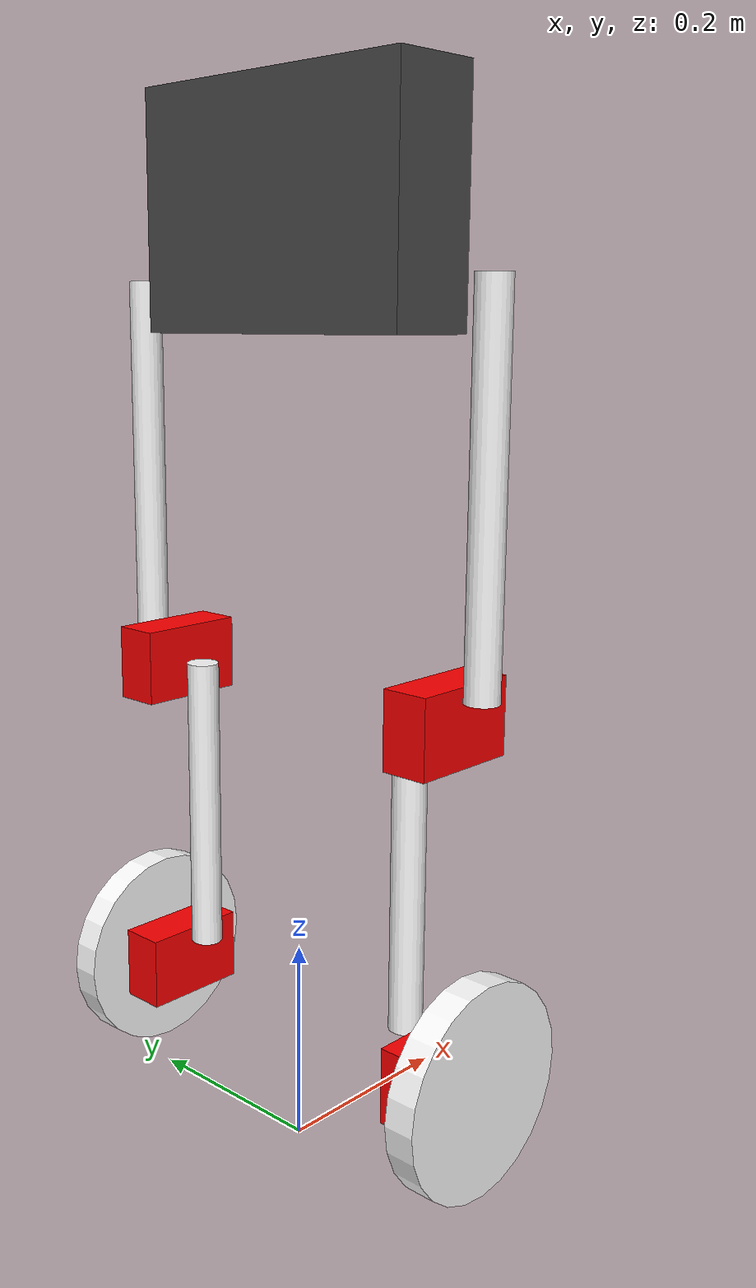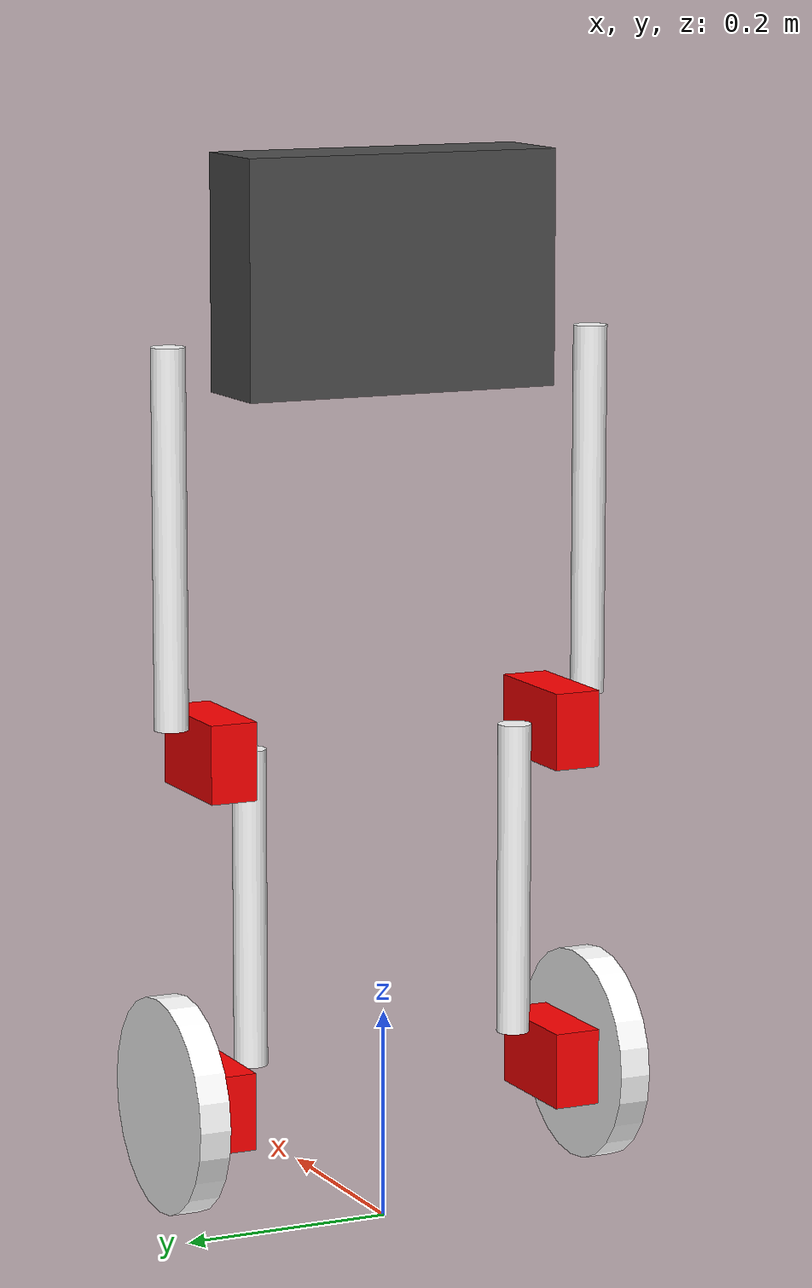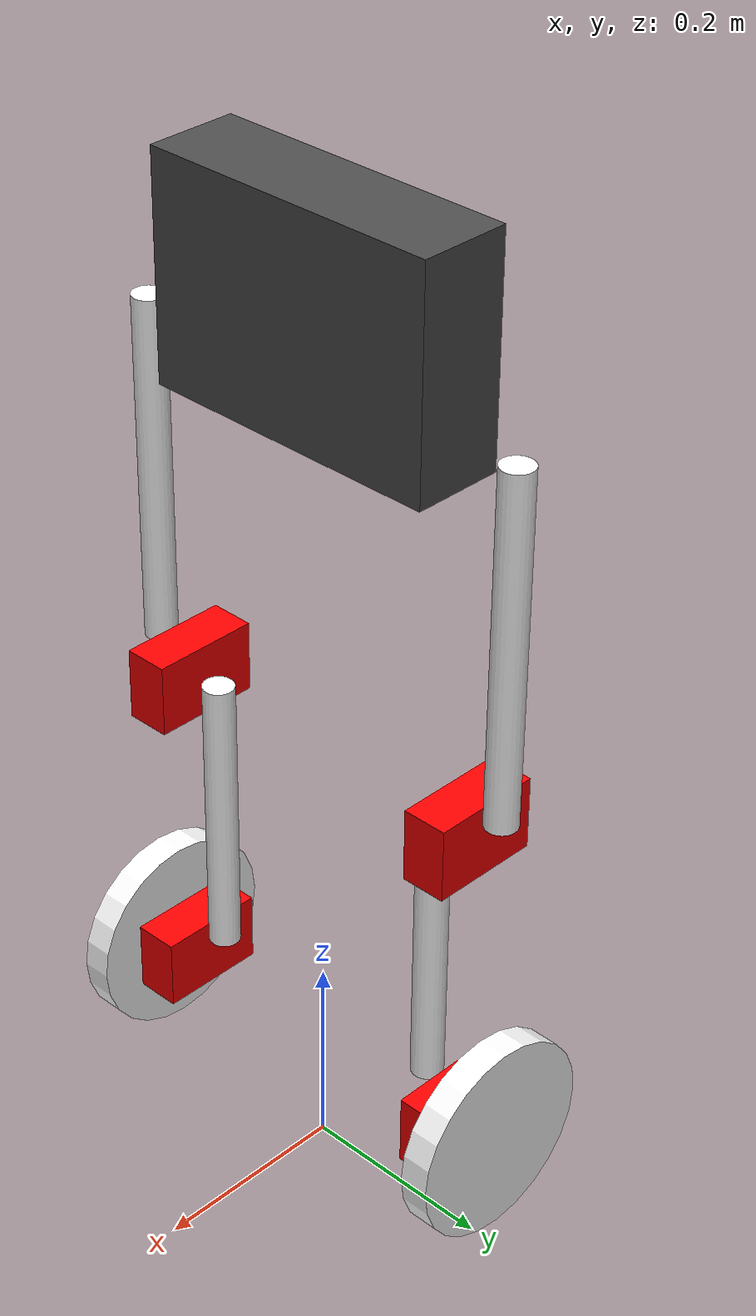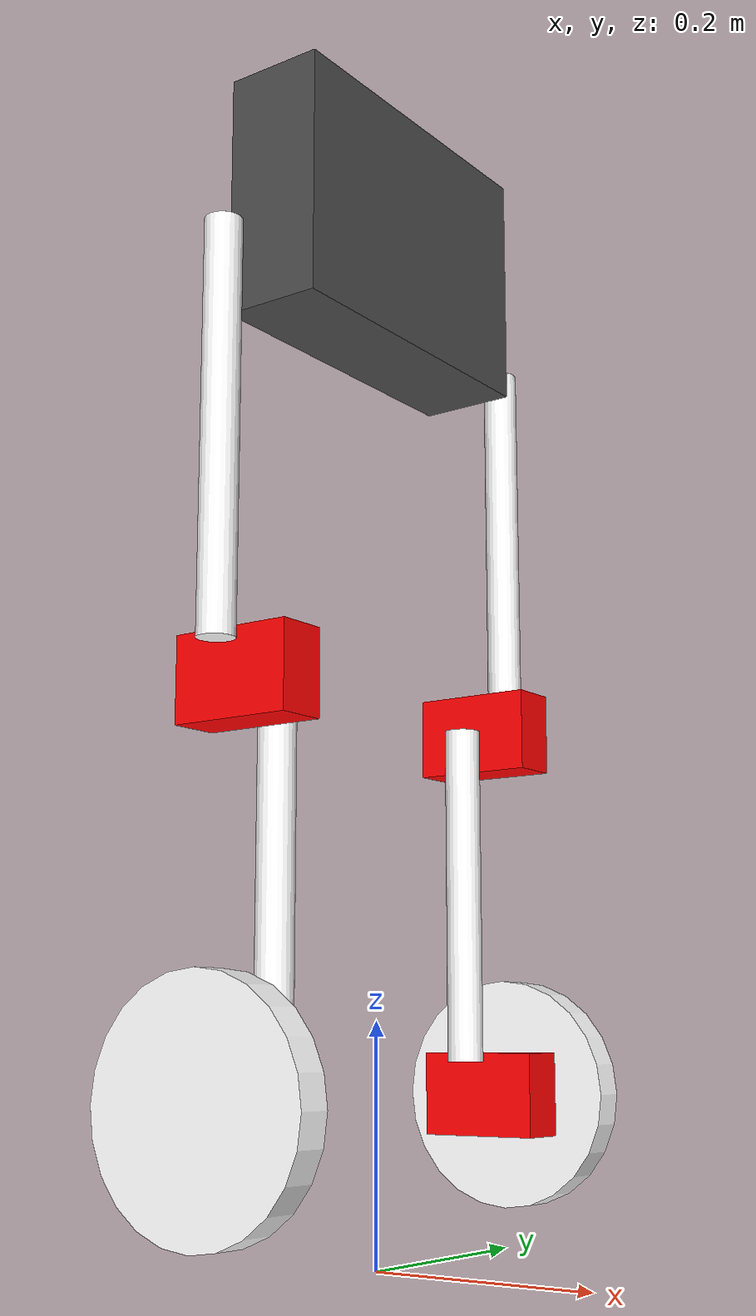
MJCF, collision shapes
<mujoco model="igor">
    <option timestep="0.002" gravity="0 0 -9.81" />
    <compiler angle="radian" assetdir="assets"/>
    <size njmax="500" nconmax="500" />

    <default>
    <default class="visual">
      <geom type="mesh" contype="0" conaffinity="0" group="2"/>
    </default>
    <default class="collision">
        <geom contype="1" conaffinity="1" group="3"/>
        </default>
    </default>

    <asset>
        <texture builtin="gradient" height="100" rgb1="1 1 1" rgb2="0 0 0" type="skybox" width="100"/>
        <texture builtin="flat" height="1278" mark="cross" markrgb="1 1 1" name="texgeom" random="0.01" rgb1="0.8 0.6 0.4" rgb2="0.8 0.6 0.4" type="cube" width="127"/>
        <texture builtin="checker" height="100" name="texplane" rgb1="0.68 1 0.83" rgb2="0 0.75 1" type="2d" width="100"/>
        <material name="MatPlane" reflectance="0.0" shininess="10" specular="1" texrepeat="60 60" texture="texplane"/>

        <material name="geom" texture="texgeom" texuniform="true"/>
        <hfield name='mytilted' file='ground_wavy.png' nrow='0' ncol='0' size='30 30 0.3 0.01' />

        <mesh file="wheel.STL" scale="0.001 0.001 0.001"/>
        <mesh file="IgorWheel.STL" scale="0.001 0.001 0.001"/>
        <mesh file="X8-Export.STL" scale="0.001 0.001 0.001"/>
        <mesh file="lowerLeg.STL" scale="0.001 0.001 0.001"/>
        <mesh file="upperLeg.STL" scale="0.001 0.001 0.001"/>

    </asset>

    <worldbody>

        <body name="torso" pos="0 0 0.9">
            <geom size="0.045 0.1525 0.109" type="box" rgba="0.3 0.3 0.3 1" />
            <geom mass="0" size="0.045 0.1525 0.109" type="box" rgba="0.3 0.3 0.3 1" class="visual"/>
            <geom pos="0.035 0.155 -0.1" quat="4.32963729e-17 4.32963729e-17 7.07106781e-01 7.07106781e-01" type="mesh" mesh="X8-Export" rgba="1 0 0 1" contype="0" conaffinity="0"/>
            <geom pos="0.035 -0.155 -0.025" quat="4.32963729e-17 -4.32963729e-17 -7.07106781e-01  7.07106781e-01" type="mesh" mesh="X8-Export" rgba="1 0 0 1" contype="0" conaffinity="0"/>
            <freejoint name="free"/>
            <body name="L_upperleg" pos="0 0.213375 -0.06">

                <inertial pos="0 -0.0259596 -0.309843" quat="0.70542 -0.0488131 0.0488131 0.70542" mass="0.68" diaginertia="0.00899163 0.00867248 0.000646855" />
                <joint name="L_hfe_joint" pos="0 0 0" axis="0 1 0" limited="true" range="-6.28318 6.28318" damping="10" />

                <geom size="0.015875 0.175" pos="0 0 -0.175" type="cylinder" rgba="1 1 1 0" />
                <geom pos="0.03 -0.045 0.025" quat="0.5 -0.5 0.5 0.5" type="mesh" mesh="upperLeg" rgba="0.3 0.3 0.3 1" contype="0" conaffinity="0"/>

                <geom size="0.055 0.0225 0.0365" pos="0 -0.038375 -0.374333" type="box" rgba="1 0 0 0" />
                <geom pos="-0.035 -0.014 -0.41" quat="0.707 0.707 0 0" type="mesh" mesh="X8-Export" rgba="1 0 0 1" contype="0" conaffinity="0"/>

                <body name="L_lowerleg" pos="0 -0.07675 -0.374333">
                    <inertial pos="0 0.0287152 -0.274897" quat="0.70457 0.0598424 -0.0598424 0.70457" mass="0.66" diaginertia="0.0068334 0.00651392 0.000642521" />
                    <joint name="L_kfe_joint" pos="0 0 0" axis="0 1 0" limited="true" range="-6.28318 6.28318" damping="10" />

                    <geom size="0.015875 0.15" pos="0 0 -0.15" type="cylinder" rgba="1 1 1 0" />
                    <geom pos="0.045 0.035 -0.38" type="mesh" quat="0.5 0.5 -0.5 0.5" mesh="lowerLeg" rgba="0.3 0.3 0.3 1" contype="0" conaffinity="0"/>

                    <geom size="0.055 0.0225 0.0365" pos="0 0.0412 -0.3292" type="box" rgba="1 0 0 0" />
                    <geom pos="-0.035 0.02 -0.292" quat="0.707 -0.707 0 0" type="mesh" mesh="X8-Export" rgba="1 0 0 1" contype="0" conaffinity="0"/>

                    <body name="L_wheel" pos="0 0.0787 -0.3292">
                        <inertial pos="0 0 0" quat="0.707107 0 0 0.707107" mass="0.35" diaginertia="0.001806 0.000929 0.000929" />
                        <joint name="L_wheel_joint" pos="0 0 0" axis="0 1 0" damping="0.25" frictionloss="0.0011" />

                        <geom size="0.1016 0.015" quat="0.707107 0.707106 0 0" type="cylinder" rgba="1 1 1 0" />
                        <geom pos ="-0.1016 -0.1016 -0.1016 " type="mesh" mesh="wheel" rgba="0.3 0.3 0.3 1" contype="0" conaffinity="0" />

                        <site name="L_sensor" size="0.1016 0.015" quat="0.707107 0.707106 0 0" type="cylinder" rgba="1 0 0 0" />
                    </body>
                </body>
            </body>
            <body name="R_upperleg" pos="0 -0.213375 -0.06">
                <inertial pos="0 0.0259596 -0.309843" quat="0.70542 0.0488131 -0.0488131 0.70542" mass="0.68" diaginertia="0.00899163 0.00867248 0.000646855" />
                <joint name="R_hfe_joint" pos="0 0 0" axis="0 1 0" limited="true" range="-6.28318 6.28318" damping="10" />

                <geom size="0.015875 0.175" pos="0 0 -0.175" type="cylinder" rgba="1 1 1 0" />
                <geom pos="-0.031 0.045 0.025" type="mesh" quat="-0.5 -0.5 -0.5 0.5" mesh="upperLeg" rgba="0.3 0.3 0.3 1" contype="0" conaffinity="0"/>

                <geom size="0.055 0.0225 0.0365" pos="0 0.038375 -0.374333" type="box" rgba="1 0 0 0" />
                <geom pos="-0.035 0.014 -0.337" quat="0.707 -0.707 0 0" type="mesh" mesh="X8-Export" rgba="1 0 0 1" contype="0" conaffinity="0"/>

                <body name="R_lowerleg" pos="0 0.07675 -0.374333">
                    <inertial pos="0 -0.0287152 -0.274897" quat="0.70457 -0.0598424 0.0598424 0.70457" mass="0.66" diaginertia="0.0068334 0.00651392 0.000642521" />
                    <joint name="R_kfe_joint" pos="0 0 0" axis="0 1 0" limited="true" range="-6.28318 6.28318" damping="10" />

                    <geom size="0.015875 0.15" pos="0 0 -0.15" type="cylinder" rgba="1 1 1 0" />
                    <geom pos="-0.04 -0.035 -0.38" type="mesh" quat="-0.5 0.5 0.5 0.5" mesh="lowerLeg" rgba="0.3 0.3 0.3 1" contype="0" conaffinity="0"/>

                    <geom size="0.055 0.0225 0.0365" pos="0 -0.0412 -0.3292" type="box" rgba="1 0 0 0" />
                    <geom pos="-0.035 -0.02 -0.365" type="mesh" quat="0.707 0.707 0 0" mesh="X8-Export" rgba="1 0 0 1" contype="0" conaffinity="0"/>

                    <body name="R_wheel" pos="0 -0.0787 -0.3292">
                        <inertial pos="0 0 0" quat="0.707107 0 0 0.707107" mass="0.35" diaginertia="0.001806 0.000929 0.000929" />
                        <joint name="R_wheel_joint" pos="0 0 0" axis="0 1 0" damping="0.25" frictionloss="0.0011" />

                        <geom size="0.1016 0.015" quat="0.707107 0.707106 0 0" type="cylinder" rgba="1 1 1 0" />
                        <geom pos="-0.1016 -0.1016 -0.1016" type="mesh" mesh="wheel" rgba="0.3 0.3 0.3 1" contype="0" conaffinity="0"/>

                        <site name="R_sensor" size="0.1016 0.015" quat="0.707107 0.707106 0 0" type="cylinder" rgba="1 0 0 0" />
                    </body>
                </body>
            </body>
        </body>
    </worldbody>

    <actuator>
        <general joint='L_wheel_joint' name='l_wheel_joint' forcerange="-3 3" biastype="affine" gainprm="50 0 0" biasprm="0 -50 -0.5"/>
        <general joint='R_wheel_joint' name='r_wheel_joint' forcerange="-3 3" biastype="affine" gainprm="50 0 0" biasprm="0 -50 -0.5"/>
        <general joint='L_kfe_joint' name='L_knee_joint' forcerange="-16 16" biastype="affine" gainprm="50 0 0" biasprm="0 -50 -0.5"/>
        <general joint='R_kfe_joint' name='R_knee_joint' forcerange="-16 16" biastype="affine" gainprm="50 0 0" biasprm="0 -50 -0.5"/>
        <general joint='L_hfe_joint' name='L_hip_joint' forcerange="-8 8" biastype="affine" gainprm="50 0 0" biasprm="0 -50 -0.5"/>
        <general joint='R_hfe_joint' name='R_hip_joint' forcerange="-8 8" biastype="affine" gainprm="50 0 0" biasprm="0 -50 -0.5"/>
    </actuator>

    <sensor>
        <touch name="L_touch" site="L_sensor"/>
        <touch name="R_touch" site="R_sensor"/>
    </sensor>
</mujoco>
